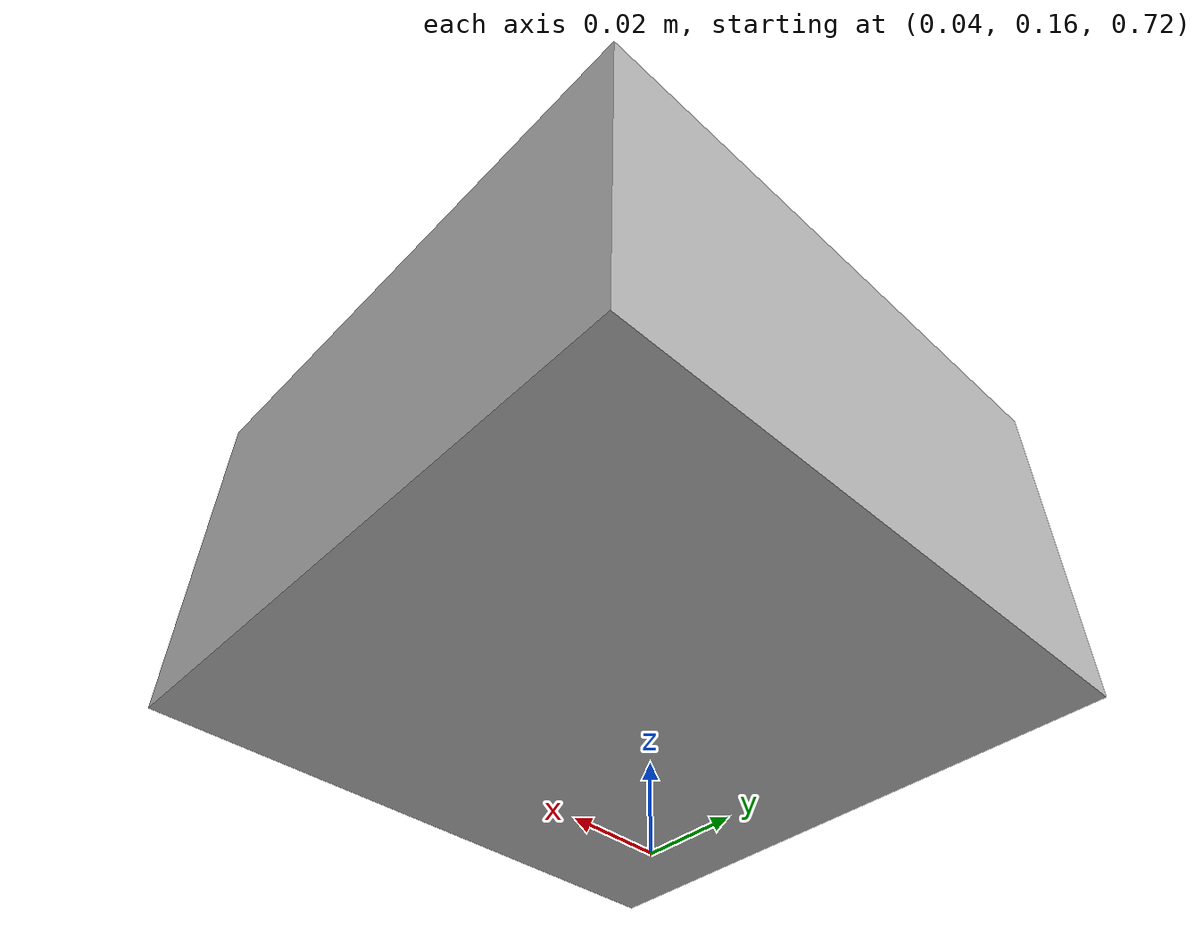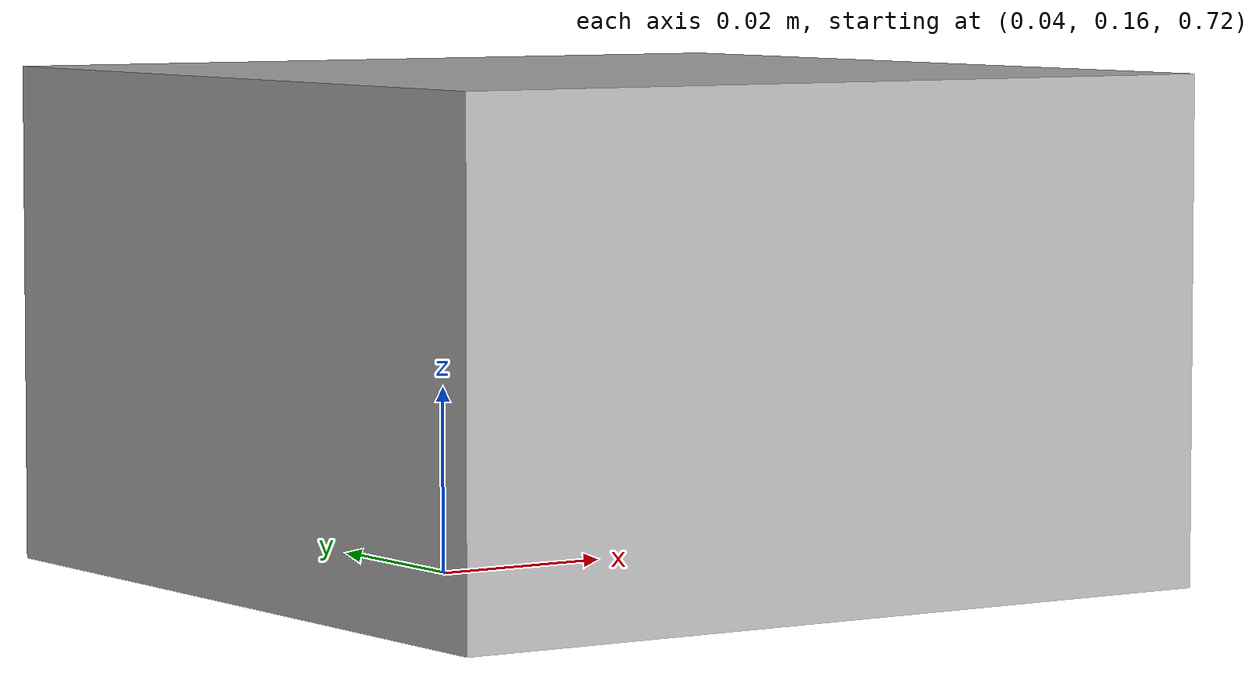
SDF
<?xml version='1.0'?>
<sdf version='1.6'>
  <model name="soporteInvisible">
    <static>true</static>
    <!--eje x, eje y , eje z  -->
    <pose>0.088179 0.202505 0.741897 0 0 0</pose>
    <link name="link">
      <collision name="collision">
        <geometry>
          <box>
            <size>0.1 0.1 0.06</size>
          </box>
        </geometry>
        <surface>
          <friction>
            <ode>
              <mu>0.5</mu>
              <mu2>0.5</mu2>
            </ode>
          </friction>
          <contact>
            <ode>
              <soft_cfm>0.01</soft_cfm>
              <soft_erp>0.8</soft_erp>
            </ode>
          </contact>
        </surface>
      </collision>
      <visual name="visual">
        <geometry>
          <box>
            <size>0.1 0.1 0.06</size>
          </box>
        </geometry>
      </visual>
    </link>
  </model>
</sdf>
